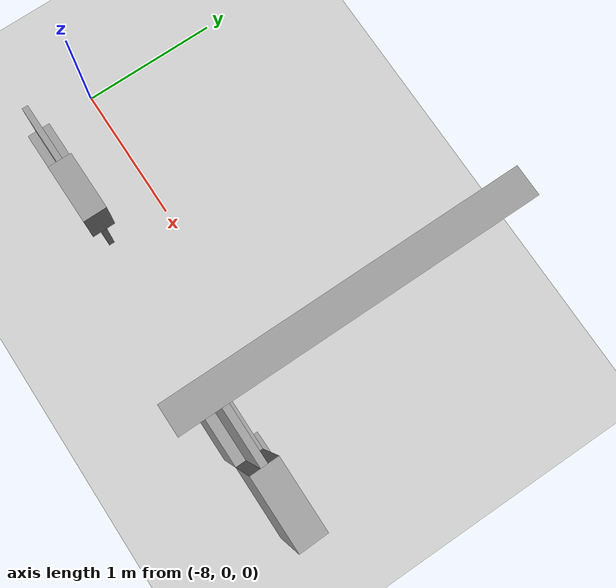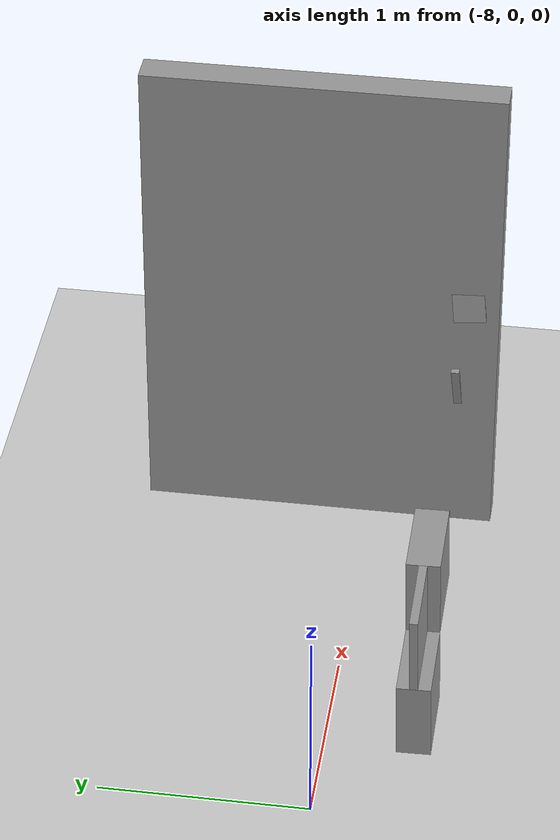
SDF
<sdf version="1.7">
 <world name="default">
  <model name="demo_clean">
   <static>1</static>
   <link name="Wall_44">
    <collision name="Wall_44_Collision">
     <geometry><box><size>1.75 0.15 2.5</size></box></geometry>
     <pose>0 0 1.25 0 -0 0</pose>
     <surface>
      <friction>
       <ode><mu>1</mu><mu2>1</mu2><fdir1>0 0 0</fdir1><slip1>0</slip1><slip2>0</slip2></ode>
       <torsional>
        <coefficient>1</coefficient>
        <patch_radius>0</patch_radius>
        <surface_radius>0</surface_radius>
        <use_patch_radius>1</use_patch_radius>
        <ode><slip>0</slip></ode>
       </torsional>
      </friction>
      <bounce><restitution_coefficient>0</restitution_coefficient><threshold>1e+06</threshold></bounce>
      <contact>
       <collide_without_contact>0</collide_without_contact>
       <collide_without_contact_bitmask>1</collide_without_contact_bitmask>
       <collide_bitmask>1</collide_bitmask>
       <ode>
        <soft_cfm>0</soft_cfm>
        <soft_erp>0.2</soft_erp>
        <kp>1e+13</kp>
        <kd>1</kd>
        <max_vel>0.01</max_vel>
        <min_depth>0</min_depth>
       </ode>
       <bullet>
        <split_impulse>1</split_impulse>
        <split_impulse_penetration_threshold>-0.01</split_impulse_penetration_threshold>
        <soft_cfm>0</soft_cfm>
        <soft_erp>0.2</soft_erp>
        <kp>1e+13</kp>
        <kd>1</kd>
       </bullet>
      </contact>
     </surface>
    </collision>
    <visual name="Wall_44_Visual">
     <geometry><box><size>1.75 0.15 2.5</size></box></geometry>
     <material>
      <script><name>Gazebo/Grey</name><uri>file://media/materials/scripts/gazebo.material</uri></script>
      <ambient>1 1 1 1</ambient>
      <shader type="pixel"><normal_map>default</normal_map></shader>
     </material>
     <pose>0 0 1.25 0 -0 0</pose>
    </visual>
    <pose>-5.71903 0.262602 0 0 0 -1.5708</pose>
   </link>
  </model>
  <model name="ground_plane">
   <static>1</static>
   <link name="link">
    <collision name="collision">
     <geometry><plane><normal>0 0 1</normal><size>100 100</size></plane></geometry>
     <surface>
      <contact><collide_bitmask>65535</collide_bitmask></contact>
      <friction><ode><mu>100</mu><mu2>50</mu2></ode></friction>
     </surface>
    </collision>
    <visual name="visual">
     <cast_shadows>0</cast_shadows>
     <geometry><plane><normal>0 0 1</normal><size>100 100</size></plane></geometry>
     <material>
      <script><uri>file://media/materials/scripts/gazebo.material</uri><name>Gazebo/Grey</name></script>
     </material>
    </visual>
   </link>
  </model>
  <model name="wall_slate_2">
   <static>1</static>
   <link name="link_0">
    <inertial><mass>1</mass></inertial>
    <gravity>0</gravity>
    <visual name="visual">
     <pose>0 0.2 0.2 0 -0 0</pose>
     <geometry><box><size>0.16 0.4 0.4</size></box></geometry>
     <material>
      <lighting>1</lighting>
      <script><uri>file://media/materials/scripts/gazebo.material</uri><name>Gazebo/Grey</name></script>
      <shader type="pixel"><normal_map>__default__</normal_map></shader>
      <ambient>0.3 0.3 0.3 1</ambient>
      <diffuse>0.7 0.7 0.7 1</diffuse>
      <specular>0.01 0.01 0.01 1</specular>
      <emissive>0 0 0 1</emissive>
     </material>
    </visual>
    <visual name="ModelPreview_0::link_0::visual_1">
     <pose>0 0.2 -0.2 0 -0 0</pose>
     <geometry><box><size>0.04 0.4 0.4</size></box></geometry>
     <material>
      <lighting>1</lighting>
      <script><uri>file://media/materials/scripts/gazebo.material</uri><name>Gazebo/Grey</name></script>
      <shader type="pixel"><normal_map>__default__</normal_map></shader>
      <ambient>0.3 0.3 0.3 1</ambient>
      <diffuse>0.7 0.7 0.7 1</diffuse>
      <specular>0.01 0.01 0.01 1</specular>
      <emissive>0 0 0 1</emissive>
     </material>
    </visual>
    <visual name="ModelPreview_0::link_0::visual_2">
     <pose>0 -0.2 0.2 0 -0 0</pose>
     <geometry><box><size>0.04 0.4 0.4</size></box></geometry>
     <material>
      <lighting>1</lighting>
      <script><uri>file://media/materials/scripts/gazebo.material</uri><name>Gazebo/Grey</name></script>
      <shader type="pixel"><normal_map>__default__</normal_map></shader>
      <ambient>0.3 0.3 0.3 1</ambient>
      <diffuse>0.7 0.7 0.7 1</diffuse>
      <specular>0.01 0.01 0.01 1</specular>
      <emissive>0 0 0 1</emissive>
     </material>
    </visual>
    <visual name="ModelPreview_0::link_0::visual_3">
     <pose>0 -0.2 -0.2 0 -0 0</pose>
     <geometry><box><size>0.16 0.4 0.4</size></box></geometry>
     <material>
      <lighting>1</lighting>
      <script><uri>file://media/materials/scripts/gazebo.material</uri><name>Gazebo/Grey</name></script>
      <shader type="pixel"><normal_map>__default__</normal_map></shader>
      <ambient>0.3 0.3 0.3 1</ambient>
      <diffuse>0.7 0.7 0.7 1</diffuse>
      <specular>0.01 0.01 0.01 1</specular>
      <emissive>0 0 0 1</emissive>
     </material>
    </visual>
    <collision name="collision_2">
     <pose>0 -0.2 0.2 0 -0 0</pose>
     <geometry><box><size>0.04 0.4 0.4</size></box></geometry>
     <surface>
      <friction>
       <ode><mu>1</mu><mu2>1</mu2><fdir1>0 0 0</fdir1><slip1>0</slip1><slip2>0</slip2></ode>
       <torsional>
        <coefficient>1</coefficient>
        <patch_radius>0</patch_radius>
        <surface_radius>0</surface_radius>
        <use_patch_radius>1</use_patch_radius>
        <ode><slip>0</slip></ode>
       </torsional>
      </friction>
      <bounce><restitution_coefficient>0</restitution_coefficient><threshold>1e+06</threshold></bounce>
      <contact>
       <collide_without_contact>0</collide_without_contact>
       <collide_without_contact_bitmask>1</collide_without_contact_bitmask>
       <collide_bitmask>1</collide_bitmask>
       <ode>
        <soft_cfm>0</soft_cfm>
        <soft_erp>0.2</soft_erp>
        <kp>1e+13</kp>
        <kd>1</kd>
        <max_vel>0.01</max_vel>
        <min_depth>0</min_depth>
       </ode>
       <bullet>
        <split_impulse>1</split_impulse>
        <split_impulse_penetration_threshold>-0.01</split_impulse_penetration_threshold>
        <soft_cfm>0</soft_cfm>
        <soft_erp>0.2</soft_erp>
        <kp>1e+13</kp>
        <kd>1</kd>
       </bullet>
      </contact>
     </surface>
    </collision>
    <collision name="collision_1">
     <pose>0 0.2 -0.2 0 -0 0</pose>
     <geometry><box><size>0.04 0.4 0.4</size></box></geometry>
     <surface>
      <friction>
       <ode><mu>1</mu><mu2>1</mu2><fdir1>0 0 0</fdir1><slip1>0</slip1><slip2>0</slip2></ode>
       <torsional>
        <coefficient>1</coefficient>
        <patch_radius>0</patch_radius>
        <surface_radius>0</surface_radius>
        <use_patch_radius>1</use_patch_radius>
        <ode><slip>0</slip></ode>
       </torsional>
      </friction>
      <bounce><restitution_coefficient>0</restitution_coefficient><threshold>1e+06</threshold></bounce>
      <contact>
       <collide_without_contact>0</collide_without_contact>
       <collide_without_contact_bitmask>1</collide_without_contact_bitmask>
       <collide_bitmask>1</collide_bitmask>
       <ode>
        <soft_cfm>0</soft_cfm>
        <soft_erp>0.2</soft_erp>
        <kp>1e+13</kp>
        <kd>1</kd>
        <max_vel>0.01</max_vel>
        <min_depth>0</min_depth>
       </ode>
       <bullet>
        <split_impulse>1</split_impulse>
        <split_impulse_penetration_threshold>-0.01</split_impulse_penetration_threshold>
        <soft_cfm>0</soft_cfm>
        <soft_erp>0.2</soft_erp>
        <kp>1e+13</kp>
        <kd>1</kd>
       </bullet>
      </contact>
     </surface>
    </collision>
    <collision name="collision_4">
     <pose>0 0.2 0.2 0 -0 0</pose>
     <geometry><box><size>0.16 0.4 0.4</size></box></geometry>
     <surface>
      <friction>
       <ode><mu>1</mu><mu2>1</mu2><fdir1>0 0 0</fdir1><slip1>0</slip1><slip2>0</slip2></ode>
       <torsional>
        <coefficient>1</coefficient>
        <patch_radius>0</patch_radius>
        <surface_radius>0</surface_radius>
        <use_patch_radius>1</use_patch_radius>
        <ode><slip>0</slip></ode>
       </torsional>
      </friction>
      <bounce><restitution_coefficient>0</restitution_coefficient><threshold>1e+06</threshold></bounce>
      <contact>
       <collide_without_contact>0</collide_without_contact>
       <collide_without_contact_bitmask>1</collide_without_contact_bitmask>
       <collide_bitmask>1</collide_bitmask>
       <ode>
        <soft_cfm>0</soft_cfm>
        <soft_erp>0.2</soft_erp>
        <kp>1e+13</kp>
        <kd>1</kd>
        <max_vel>0.01</max_vel>
        <min_depth>0</min_depth>
       </ode>
       <bullet>
        <split_impulse>1</split_impulse>
        <split_impulse_penetration_threshold>-0.01</split_impulse_penetration_threshold>
        <soft_cfm>0</soft_cfm>
        <soft_erp>0.2</soft_erp>
        <kp>1e+13</kp>
        <kd>1</kd>
       </bullet>
      </contact>
     </surface>
    </collision>
    <collision name="collision_3">
     <pose>0 -0.2 -0.2 0 -0 0</pose>
     <geometry><box><size>0.16 0.4 0.4</size></box></geometry>
     <surface>
      <friction>
       <ode><mu>1</mu><mu2>1</mu2><fdir1>0 0 0</fdir1><slip1>0</slip1><slip2>0</slip2></ode>
       <torsional>
        <coefficient>1</coefficient>
        <patch_radius>0</patch_radius>
        <surface_radius>0</surface_radius>
        <use_patch_radius>1</use_patch_radius>
        <ode><slip>0</slip></ode>
       </torsional>
      </friction>
      <bounce><restitution_coefficient>0</restitution_coefficient><threshold>1e+06</threshold></bounce>
      <contact>
       <collide_without_contact>0</collide_without_contact>
       <collide_without_contact_bitmask>1</collide_without_contact_bitmask>
       <collide_bitmask>1</collide_bitmask>
       <ode>
        <soft_cfm>0</soft_cfm>
        <soft_erp>0.2</soft_erp>
        <kp>1e+13</kp>
        <kd>1</kd>
        <max_vel>0.01</max_vel>
        <min_depth>0</min_depth>
       </ode>
       <bullet>
        <split_impulse>1</split_impulse>
        <split_impulse_penetration_threshold>-0.01</split_impulse_penetration_threshold>
        <soft_cfm>0</soft_cfm>
        <soft_erp>0.2</soft_erp>
        <kp>1e+13</kp>
        <kd>1</kd>
       </bullet>
      </contact>
     </surface>
    </collision>
   </link>
   <pose>-5.37149 -0.433826 1.6 -0.1 -0.1 -1.5659</pose>
  </model>
  <model name="wall_slate_11">
   <static>1</static>
   <link name="link_0">
    <inertial><mass>1</mass></inertial>
    <gravity>0</gravity>
    <visual name="visual">
     <pose>0 0.2 0.2 0 -0 0</pose>
     <geometry><box><size>0.16 0.4 0.4</size></box></geometry>
     <material>
      <lighting>1</lighting>
      <script><uri>file://media/materials/scripts/gazebo.material</uri><name>Gazebo/Grey</name></script>
      <shader type="pixel"><normal_map>__default__</normal_map></shader>
      <ambient>0.3 0.3 0.3 1</ambient>
      <diffuse>0.7 0.7 0.7 1</diffuse>
      <specular>0.01 0.01 0.01 1</specular>
      <emissive>0 0 0 1</emissive>
     </material>
    </visual>
    <visual name="ModelPreview_0::link_0::visual_1">
     <pose>0 0.2 -0.2 0 -0 0</pose>
     <geometry><box><size>0.04 0.4 0.4</size></box></geometry>
     <material>
      <lighting>1</lighting>
      <script><uri>file://media/materials/scripts/gazebo.material</uri><name>Gazebo/Grey</name></script>
      <shader type="pixel"><normal_map>__default__</normal_map></shader>
      <ambient>0.3 0.3 0.3 1</ambient>
      <diffuse>0.7 0.7 0.7 1</diffuse>
      <specular>0.01 0.01 0.01 1</specular>
      <emissive>0 0 0 1</emissive>
     </material>
    </visual>
    <visual name="ModelPreview_0::link_0::visual_2">
     <pose>0 -0.2 0.2 0 -0 0</pose>
     <geometry><box><size>0.04 0.4 0.4</size></box></geometry>
     <material>
      <lighting>1</lighting>
      <script><uri>file://media/materials/scripts/gazebo.material</uri><name>Gazebo/Grey</name></script>
      <shader type="pixel"><normal_map>__default__</normal_map></shader>
      <ambient>0.3 0.3 0.3 1</ambient>
      <diffuse>0.7 0.7 0.7 1</diffuse>
      <specular>0.01 0.01 0.01 1</specular>
      <emissive>0 0 0 1</emissive>
     </material>
    </visual>
    <visual name="ModelPreview_0::link_0::visual_3">
     <pose>0 -0.2 -0.2 0 -0 0</pose>
     <geometry><box><size>0.16 0.4 0.4</size></box></geometry>
     <material>
      <lighting>1</lighting>
      <script><uri>file://media/materials/scripts/gazebo.material</uri><name>Gazebo/Grey</name></script>
      <shader type="pixel"><normal_map>__default__</normal_map></shader>
      <ambient>0.3 0.3 0.3 1</ambient>
      <diffuse>0.7 0.7 0.7 1</diffuse>
      <specular>0.01 0.01 0.01 1</specular>
      <emissive>0 0 0 1</emissive>
     </material>
    </visual>
    <collision name="collision_2">
     <pose>0 -0.2 0.2 0 -0 0</pose>
     <geometry><box><size>0.04 0.4 0.4</size></box></geometry>
     <surface>
      <friction>
       <ode><mu>1</mu><mu2>1</mu2><fdir1>0 0 0</fdir1><slip1>0</slip1><slip2>0</slip2></ode>
       <torsional>
        <coefficient>1</coefficient>
        <patch_radius>0</patch_radius>
        <surface_radius>0</surface_radius>
        <use_patch_radius>1</use_patch_radius>
        <ode><slip>0</slip></ode>
       </torsional>
      </friction>
      <bounce><restitution_coefficient>0</restitution_coefficient><threshold>1e+06</threshold></bounce>
      <contact>
       <collide_without_contact>0</collide_without_contact>
       <collide_without_contact_bitmask>1</collide_without_contact_bitmask>
       <collide_bitmask>1</collide_bitmask>
       <ode>
        <soft_cfm>0</soft_cfm>
        <soft_erp>0.2</soft_erp>
        <kp>1e+13</kp>
        <kd>1</kd>
        <max_vel>0.01</max_vel>
        <min_depth>0</min_depth>
       </ode>
       <bullet>
        <split_impulse>1</split_impulse>
        <split_impulse_penetration_threshold>-0.01</split_impulse_penetration_threshold>
        <soft_cfm>0</soft_cfm>
        <soft_erp>0.2</soft_erp>
        <kp>1e+13</kp>
        <kd>1</kd>
       </bullet>
      </contact>
     </surface>
    </collision>
    <collision name="collision_1">
     <pose>0 0.2 -0.2 0 -0 0</pose>
     <geometry><box><size>0.04 0.4 0.4</size></box></geometry>
     <surface>
      <friction>
       <ode><mu>1</mu><mu2>1</mu2><fdir1>0 0 0</fdir1><slip1>0</slip1><slip2>0</slip2></ode>
       <torsional>
        <coefficient>1</coefficient>
        <patch_radius>0</patch_radius>
        <surface_radius>0</surface_radius>
        <use_patch_radius>1</use_patch_radius>
        <ode><slip>0</slip></ode>
       </torsional>
      </friction>
      <bounce><restitution_coefficient>0</restitution_coefficient><threshold>1e+06</threshold></bounce>
      <contact>
       <collide_without_contact>0</collide_without_contact>
       <collide_without_contact_bitmask>1</collide_without_contact_bitmask>
       <collide_bitmask>1</collide_bitmask>
       <ode>
        <soft_cfm>0</soft_cfm>
        <soft_erp>0.2</soft_erp>
        <kp>1e+13</kp>
        <kd>1</kd>
        <max_vel>0.01</max_vel>
        <min_depth>0</min_depth>
       </ode>
       <bullet>
        <split_impulse>1</split_impulse>
        <split_impulse_penetration_threshold>-0.01</split_impulse_penetration_threshold>
        <soft_cfm>0</soft_cfm>
        <soft_erp>0.2</soft_erp>
        <kp>1e+13</kp>
        <kd>1</kd>
       </bullet>
      </contact>
     </surface>
    </collision>
    <collision name="collision_4">
     <pose>0 0.2 0.2 0 -0 0</pose>
     <geometry><box><size>0.16 0.4 0.4</size></box></geometry>
     <surface>
      <friction>
       <ode><mu>1</mu><mu2>1</mu2><fdir1>0 0 0</fdir1><slip1>0</slip1><slip2>0</slip2></ode>
       <torsional>
        <coefficient>1</coefficient>
        <patch_radius>0</patch_radius>
        <surface_radius>0</surface_radius>
        <use_patch_radius>1</use_patch_radius>
        <ode><slip>0</slip></ode>
       </torsional>
      </friction>
      <bounce><restitution_coefficient>0</restitution_coefficient><threshold>1e+06</threshold></bounce>
      <contact>
       <collide_without_contact>0</collide_without_contact>
       <collide_without_contact_bitmask>1</collide_without_contact_bitmask>
       <collide_bitmask>1</collide_bitmask>
       <ode>
        <soft_cfm>0</soft_cfm>
        <soft_erp>0.2</soft_erp>
        <kp>1e+13</kp>
        <kd>1</kd>
        <max_vel>0.01</max_vel>
        <min_depth>0</min_depth>
       </ode>
       <bullet>
        <split_impulse>1</split_impulse>
        <split_impulse_penetration_threshold>-0.01</split_impulse_penetration_threshold>
        <soft_cfm>0</soft_cfm>
        <soft_erp>0.2</soft_erp>
        <kp>1e+13</kp>
        <kd>1</kd>
       </bullet>
      </contact>
     </surface>
    </collision>
    <collision name="collision_3">
     <pose>0 -0.2 -0.2 0 -0 0</pose>
     <geometry><box><size>0.16 0.4 0.4</size></box></geometry>
     <surface>
      <friction>
       <ode><mu>1</mu><mu2>1</mu2><fdir1>0 0 0</fdir1><slip1>0</slip1><slip2>0</slip2></ode>
       <torsional>
        <coefficient>1</coefficient>
        <patch_radius>0</patch_radius>
        <surface_radius>0</surface_radius>
        <use_patch_radius>1</use_patch_radius>
        <ode><slip>0</slip></ode>
       </torsional>
      </friction>
      <bounce><restitution_coefficient>0</restitution_coefficient><threshold>1e+06</threshold></bounce>
      <contact>
       <collide_without_contact>0</collide_without_contact>
       <collide_without_contact_bitmask>1</collide_without_contact_bitmask>
       <collide_bitmask>1</collide_bitmask>
       <ode>
        <soft_cfm>0</soft_cfm>
        <soft_erp>0.2</soft_erp>
        <kp>1e+13</kp>
        <kd>1</kd>
        <max_vel>0.01</max_vel>
        <min_depth>0</min_depth>
       </ode>
       <bullet>
        <split_impulse>1</split_impulse>
        <split_impulse_penetration_threshold>-0.01</split_impulse_penetration_threshold>
        <soft_cfm>0</soft_cfm>
        <soft_erp>0.2</soft_erp>
        <kp>1e+13</kp>
        <kd>1</kd>
       </bullet>
      </contact>
     </surface>
    </collision>
   </link>
   <pose>-7.37149 -0.433832 0.6 0.02 -0.02 -1.5659</pose>
  </model>
  <model name="wall_slate_59">
   <static>1</static>
   <link name="link_0">
    <inertial><mass>1</mass></inertial>
    <gravity>0</gravity>
    <visual name="visual">
     <pose>0 0.2 0.2 0 -0 0</pose>
     <geometry><box><size>0.16 0.4 0.4</size></box></geometry>
     <material>
      <lighting>1</lighting>
      <script><uri>file://media/materials/scripts/gazebo.material</uri><name>Gazebo/Grey</name></script>
      <shader type="pixel"><normal_map>__default__</normal_map></shader>
      <ambient>0.3 0.3 0.3 1</ambient>
      <diffuse>0.7 0.7 0.7 1</diffuse>
      <specular>0.01 0.01 0.01 1</specular>
      <emissive>0 0 0 1</emissive>
     </material>
    </visual>
    <visual name="ModelPreview_0::link_0::visual_1">
     <pose>0 0.2 -0.2 0 -0 0</pose>
     <geometry><box><size>0.04 0.4 0.4</size></box></geometry>
     <material>
      <lighting>1</lighting>
      <script><uri>file://media/materials/scripts/gazebo.material</uri><name>Gazebo/Grey</name></script>
      <shader type="pixel"><normal_map>__default__</normal_map></shader>
      <ambient>0.3 0.3 0.3 1</ambient>
      <diffuse>0.7 0.7 0.7 1</diffuse>
      <specular>0.01 0.01 0.01 1</specular>
      <emissive>0 0 0 1</emissive>
     </material>
    </visual>
    <visual name="ModelPreview_0::link_0::visual_2">
     <pose>0 -0.2 0.2 0 -0 0</pose>
     <geometry><box><size>0.04 0.4 0.4</size></box></geometry>
     <material>
      <lighting>1</lighting>
      <script><uri>file://media/materials/scripts/gazebo.material</uri><name>Gazebo/Grey</name></script>
      <shader type="pixel"><normal_map>__default__</normal_map></shader>
      <ambient>0.3 0.3 0.3 1</ambient>
      <diffuse>0.7 0.7 0.7 1</diffuse>
      <specular>0.01 0.01 0.01 1</specular>
      <emissive>0 0 0 1</emissive>
     </material>
    </visual>
    <visual name="ModelPreview_0::link_0::visual_3">
     <pose>0 -0.2 -0.2 0 -0 0</pose>
     <geometry><box><size>0.16 0.4 0.4</size></box></geometry>
     <material>
      <lighting>1</lighting>
      <script><uri>file://media/materials/scripts/gazebo.material</uri><name>Gazebo/Grey</name></script>
      <shader type="pixel"><normal_map>__default__</normal_map></shader>
      <ambient>0.3 0.3 0.3 1</ambient>
      <diffuse>0.7 0.7 0.7 1</diffuse>
      <specular>0.01 0.01 0.01 1</specular>
      <emissive>0 0 0 1</emissive>
     </material>
    </visual>
    <collision name="collision_2">
     <pose>0 -0.2 0.2 0 -0 0</pose>
     <geometry><box><size>0.04 0.4 0.4</size></box></geometry>
     <surface>
      <friction>
       <ode><mu>1</mu><mu2>1</mu2><fdir1>0 0 0</fdir1><slip1>0</slip1><slip2>0</slip2></ode>
       <torsional>
        <coefficient>1</coefficient>
        <patch_radius>0</patch_radius>
        <surface_radius>0</surface_radius>
        <use_patch_radius>1</use_patch_radius>
        <ode><slip>0</slip></ode>
       </torsional>
      </friction>
      <bounce><restitution_coefficient>0</restitution_coefficient><threshold>1e+06</threshold></bounce>
      <contact>
       <collide_without_contact>0</collide_without_contact>
       <collide_without_contact_bitmask>1</collide_without_contact_bitmask>
       <collide_bitmask>1</collide_bitmask>
       <ode>
        <soft_cfm>0</soft_cfm>
        <soft_erp>0.2</soft_erp>
        <kp>1e+13</kp>
        <kd>1</kd>
        <max_vel>0.01</max_vel>
        <min_depth>0</min_depth>
       </ode>
       <bullet>
        <split_impulse>1</split_impulse>
        <split_impulse_penetration_threshold>-0.01</split_impulse_penetration_threshold>
        <soft_cfm>0</soft_cfm>
        <soft_erp>0.2</soft_erp>
        <kp>1e+13</kp>
        <kd>1</kd>
       </bullet>
      </contact>
     </surface>
    </collision>
    <collision name="collision_1">
     <pose>0 0.2 -0.2 0 -0 0</pose>
     <geometry><box><size>0.04 0.4 0.4</size></box></geometry>
     <surface>
      <friction>
       <ode><mu>1</mu><mu2>1</mu2><fdir1>0 0 0</fdir1><slip1>0</slip1><slip2>0</slip2></ode>
       <torsional>
        <coefficient>1</coefficient>
        <patch_radius>0</patch_radius>
        <surface_radius>0</surface_radius>
        <use_patch_radius>1</use_patch_radius>
        <ode><slip>0</slip></ode>
       </torsional>
      </friction>
      <bounce><restitution_coefficient>0</restitution_coefficient><threshold>1e+06</threshold></bounce>
      <contact>
       <collide_without_contact>0</collide_without_contact>
       <collide_without_contact_bitmask>1</collide_without_contact_bitmask>
       <collide_bitmask>1</collide_bitmask>
       <ode>
        <soft_cfm>0</soft_cfm>
        <soft_erp>0.2</soft_erp>
        <kp>1e+13</kp>
        <kd>1</kd>
        <max_vel>0.01</max_vel>
        <min_depth>0</min_depth>
       </ode>
       <bullet>
        <split_impulse>1</split_impulse>
        <split_impulse_penetration_threshold>-0.01</split_impulse_penetration_threshold>
        <soft_cfm>0</soft_cfm>
        <soft_erp>0.2</soft_erp>
        <kp>1e+13</kp>
        <kd>1</kd>
       </bullet>
      </contact>
     </surface>
    </collision>
    <collision name="collision_4">
     <pose>0 0.2 0.2 0 -0 0</pose>
     <geometry><box><size>0.16 0.4 0.4</size></box></geometry>
     <surface>
      <friction>
       <ode><mu>1</mu><mu2>1</mu2><fdir1>0 0 0</fdir1><slip1>0</slip1><slip2>0</slip2></ode>
       <torsional>
        <coefficient>1</coefficient>
        <patch_radius>0</patch_radius>
        <surface_radius>0</surface_radius>
        <use_patch_radius>1</use_patch_radius>
        <ode><slip>0</slip></ode>
       </torsional>
      </friction>
      <bounce><restitution_coefficient>0</restitution_coefficient><threshold>1e+06</threshold></bounce>
      <contact>
       <collide_without_contact>0</collide_without_contact>
       <collide_without_contact_bitmask>1</collide_without_contact_bitmask>
       <collide_bitmask>1</collide_bitmask>
       <ode>
        <soft_cfm>0</soft_cfm>
        <soft_erp>0.2</soft_erp>
        <kp>1e+13</kp>
        <kd>1</kd>
        <max_vel>0.01</max_vel>
        <min_depth>0</min_depth>
       </ode>
       <bullet>
        <split_impulse>1</split_impulse>
        <split_impulse_penetration_threshold>-0.01</split_impulse_penetration_threshold>
        <soft_cfm>0</soft_cfm>
        <soft_erp>0.2</soft_erp>
        <kp>1e+13</kp>
        <kd>1</kd>
       </bullet>
      </contact>
     </surface>
    </collision>
    <collision name="collision_3">
     <pose>0 -0.2 -0.2 0 -0 0</pose>
     <geometry><box><size>0.16 0.4 0.4</size></box></geometry>
     <surface>
      <friction>
       <ode><mu>1</mu><mu2>1</mu2><fdir1>0 0 0</fdir1><slip1>0</slip1><slip2>0</slip2></ode>
       <torsional>
        <coefficient>1</coefficient>
        <patch_radius>0</patch_radius>
        <surface_radius>0</surface_radius>
        <use_patch_radius>1</use_patch_radius>
        <ode><slip>0</slip></ode>
       </torsional>
      </friction>
      <bounce><restitution_coefficient>0</restitution_coefficient><threshold>1e+06</threshold></bounce>
      <contact>
       <collide_without_contact>0</collide_without_contact>
       <collide_without_contact_bitmask>1</collide_without_contact_bitmask>
       <collide_bitmask>1</collide_bitmask>
       <ode>
        <soft_cfm>0</soft_cfm>
        <soft_erp>0.2</soft_erp>
        <kp>1e+13</kp>
        <kd>1</kd>
        <max_vel>0.01</max_vel>
        <min_depth>0</min_depth>
       </ode>
       <bullet>
        <split_impulse>1</split_impulse>
        <split_impulse_penetration_threshold>-0.01</split_impulse_penetration_threshold>
        <soft_cfm>0</soft_cfm>
        <soft_erp>0.2</soft_erp>
        <kp>1e+13</kp>
        <kd>1</kd>
       </bullet>
      </contact>
     </surface>
    </collision>
   </link>
   <pose>-5.37149 -0.433826 0.6 0.14 -0.08 -1.5659</pose>
  </model>
 </world>
</sdf>
